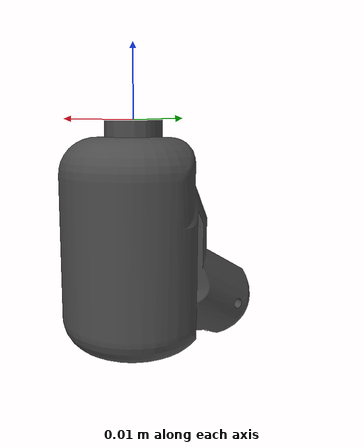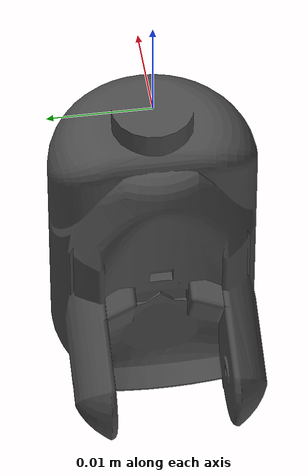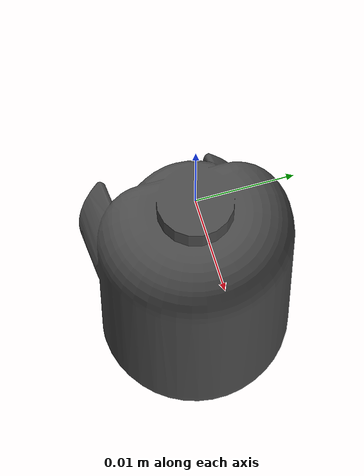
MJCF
<mujoco model="thumb_right_link">
  <default>
    <default class="visual">
      <geom group="2" type="mesh" contype="0" conaffinity="0"/>
    </default>
    <default class="collision">
      <geom group="3" type="mesh"/>
    </default>
  </default>
  <asset>
    <material name="mtl_thumb_right_link" specular="0.20000000000000004" shininess="1.0" rgba="0.29803922 0.29803922 0.29803922 1.0"/>
    <mesh file="thumb_right_link.obj"/>
  </asset>
  <worldbody>
    <body name="thumb_right_link">
      <geom material="mtl_thumb_right_link" mesh="thumb_right_link" class="visual"/>
      <geom mesh="thumb_right_link" class="collision"/>
    </body>
  </worldbody>
</mujoco>
